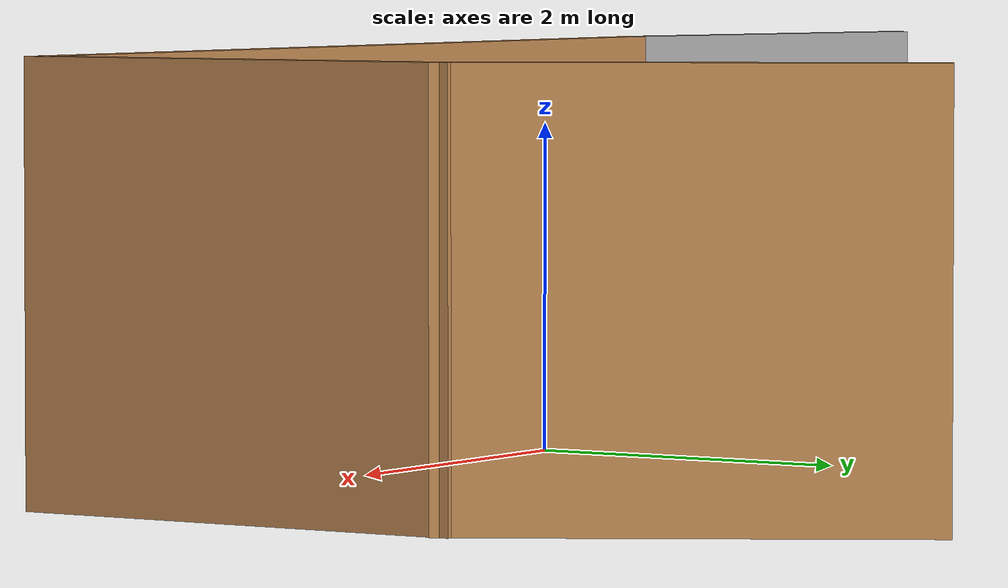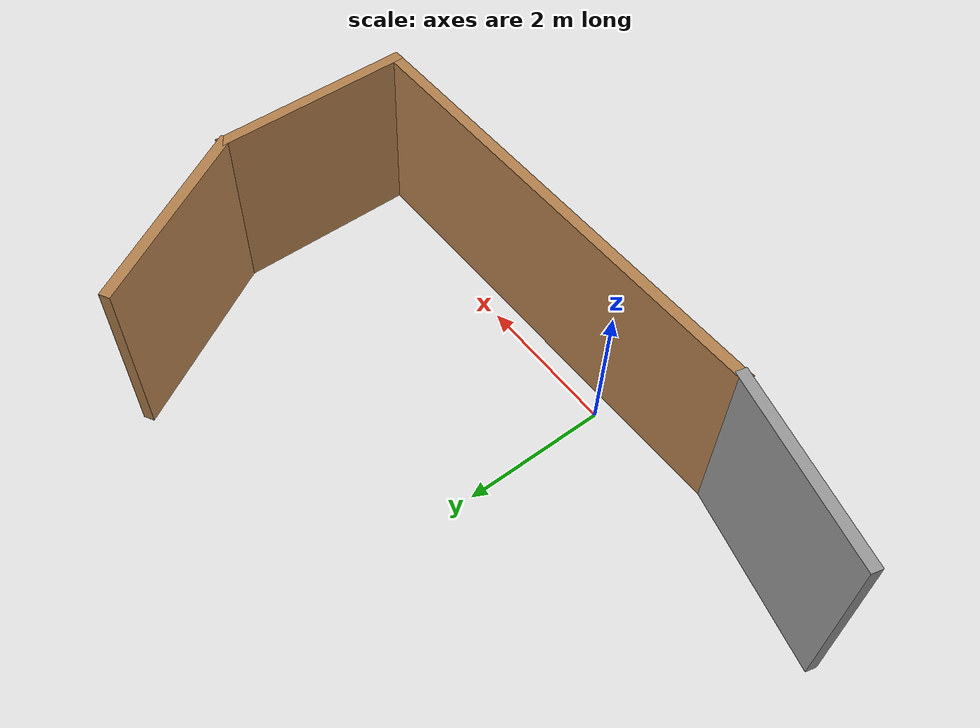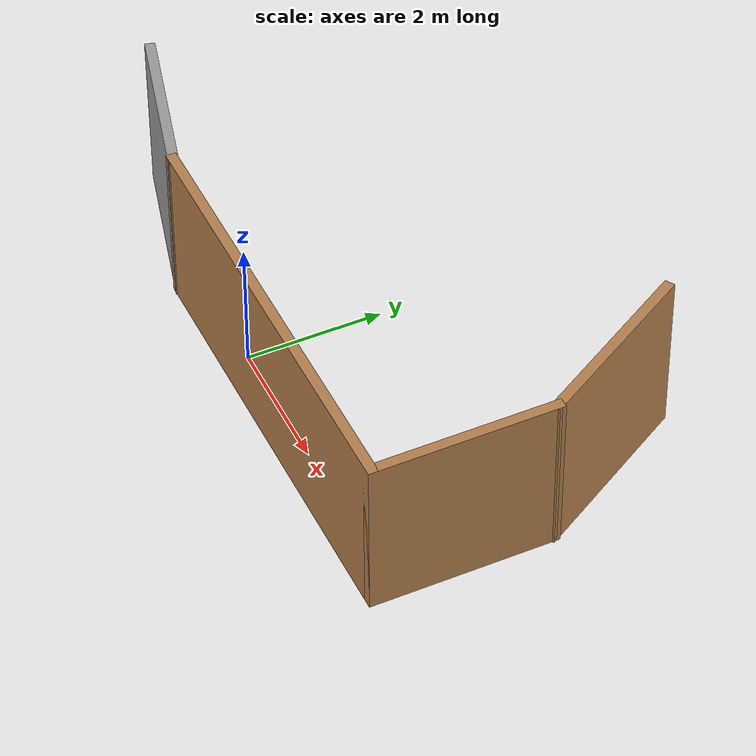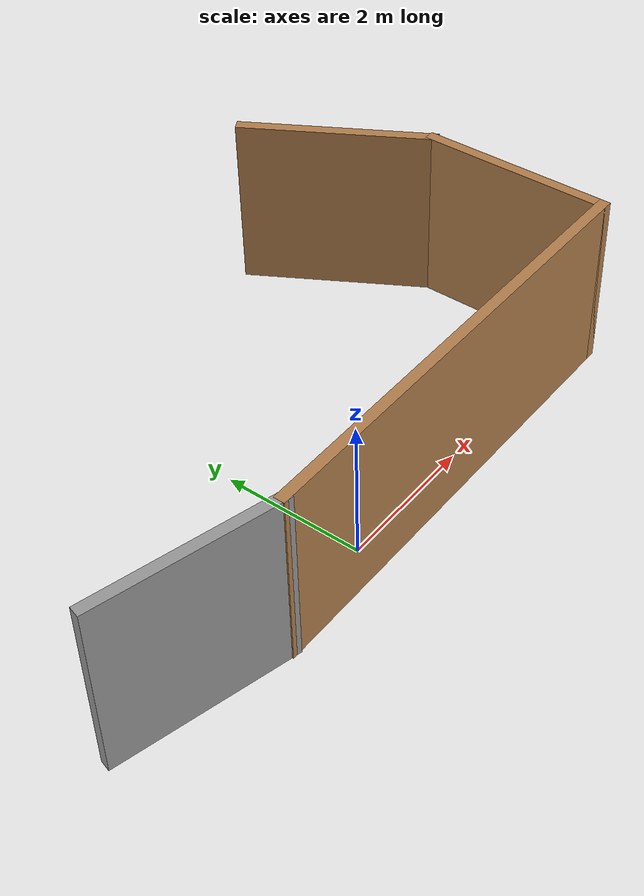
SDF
<?xml version='1.0'?>
<sdf version='1.7'>
  <model name='first'>
    <pose>0.416261 2.11006 0 0 -0 0</pose>
    <link name='Wall_0'>
      <collision name='Wall_0_Collision'>
        <geometry>
          <box>
            <size>2.5 0.15 2.5</size>
          </box>
        </geometry>
        <pose>0 0 1.25 0 -0 0</pose>
      </collision>
      <visual name='Wall_0_Visual'>
        <pose>0 0 1.25 0 -0 0</pose>
        <geometry>
          <box>
            <size>2.5 0.15 2.5</size>
          </box>
        </geometry>
        <material>
          <script>
            <uri>file://media/materials/scripts/gazebo.material</uri>
            <name>Gazebo/Grey</name>
          </script>
          <ambient>1 1 1 1</ambient>
        </material>
        <meta>
          <layer>0</layer>
        </meta>
      </visual>
      <pose>-3.1803 -2.12702 0 0 -0 -0.261799</pose>
    </link>
    <link name='Wall_1'>
      <collision name='Wall_1_Collision'>
        <geometry>
          <box>
            <size>6.5 0.15 2.5</size>
          </box>
        </geometry>
        <pose>0 0 1.25 0 -0 0</pose>
      </collision>
      <visual name='Wall_1_Visual'>
        <pose>0 0 1.25 0 -0 0</pose>
        <geometry>
          <box>
            <size>6.5 0.15 2.5</size>
          </box>
        </geometry>
        <material>
          <script>
            <uri>file://media/materials/scripts/gazebo.material</uri>
            <name>Gazebo/Wood</name>
          </script>
          <ambient>1 1 1 1</ambient>
        </material>
        <meta>
          <layer>0</layer>
        </meta>
      </visual>
      <pose>1.12966 -2.43113 0 0 -0 0</pose>
    </link>
    <link name='Wall_2'>
      <collision name='Wall_2_Collision'>
        <geometry>
          <box>
            <size>2.75 0.15 2.5</size>
          </box>
        </geometry>
        <pose>0 0 1.25 0 -0 0</pose>
      </collision>
      <visual name='Wall_2_Visual'>
        <pose>0 0 1.25 0 -0 0</pose>
        <geometry>
          <box>
            <size>2.75 0.15 2.5</size>
          </box>
        </geometry>
        <material>
          <script>
            <uri>file://media/materials/scripts/gazebo.material</uri>
            <name>Gazebo/Wood</name>
          </script>
          <ambient>1 1 1 1</ambient>
        </material>
        <meta>
          <layer>0</layer>
        </meta>
      </visual>
      <pose>4.30466 -1.13113 0 0 -0 1.5708</pose>
    </link>
    <link name='Wall_3'>
      <collision name='Wall_3_Collision'>
        <geometry>
          <box>
            <size>2.75 0.15 2.5</size>
          </box>
        </geometry>
        <pose>0 0 1.25 0 -0 0</pose>
      </collision>
      <visual name='Wall_3_Visual'>
        <pose>0 0 1.25 0 -0 0</pose>
        <geometry>
          <box>
            <size>2.75 0.15 2.5</size>
          </box>
        </geometry>
        <material>
          <script>
            <uri>file://media/materials/scripts/gazebo.material</uri>
            <name>Gazebo/Wood</name>
          </script>
          <ambient>1 1 1 1</ambient>
        </material>
        <meta>
          <layer>0</layer>
        </meta>
      </visual>
      <pose>3.65467 1.2947 0 0 -0 2.0944</pose>
    </link>
    <static>1</static>
  </model>
</sdf>
